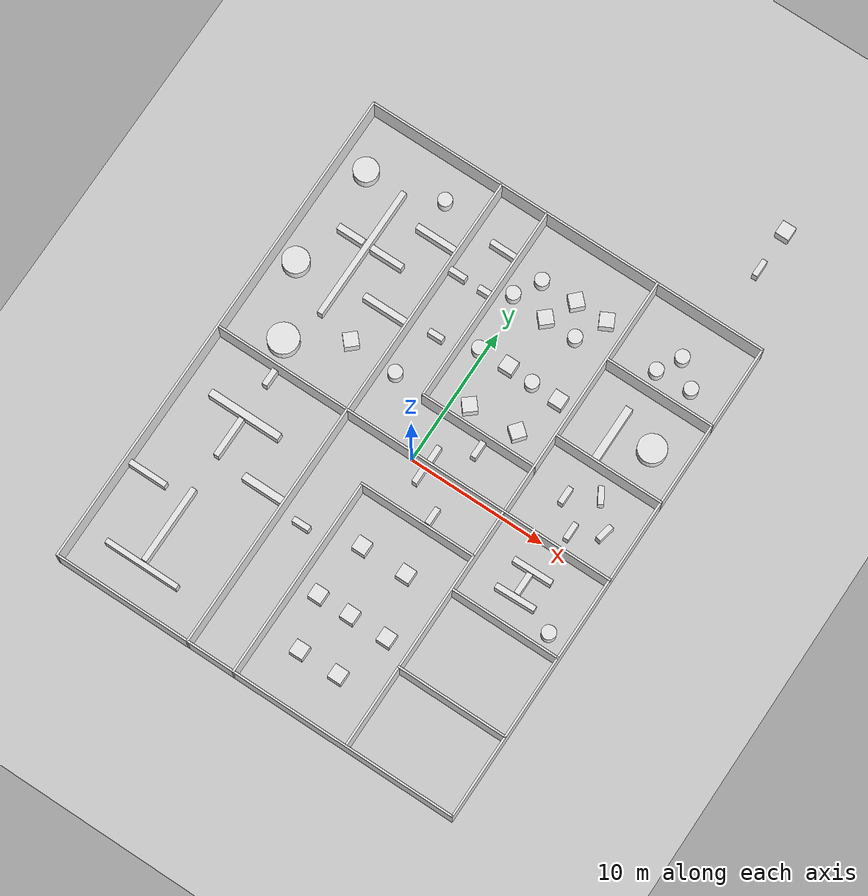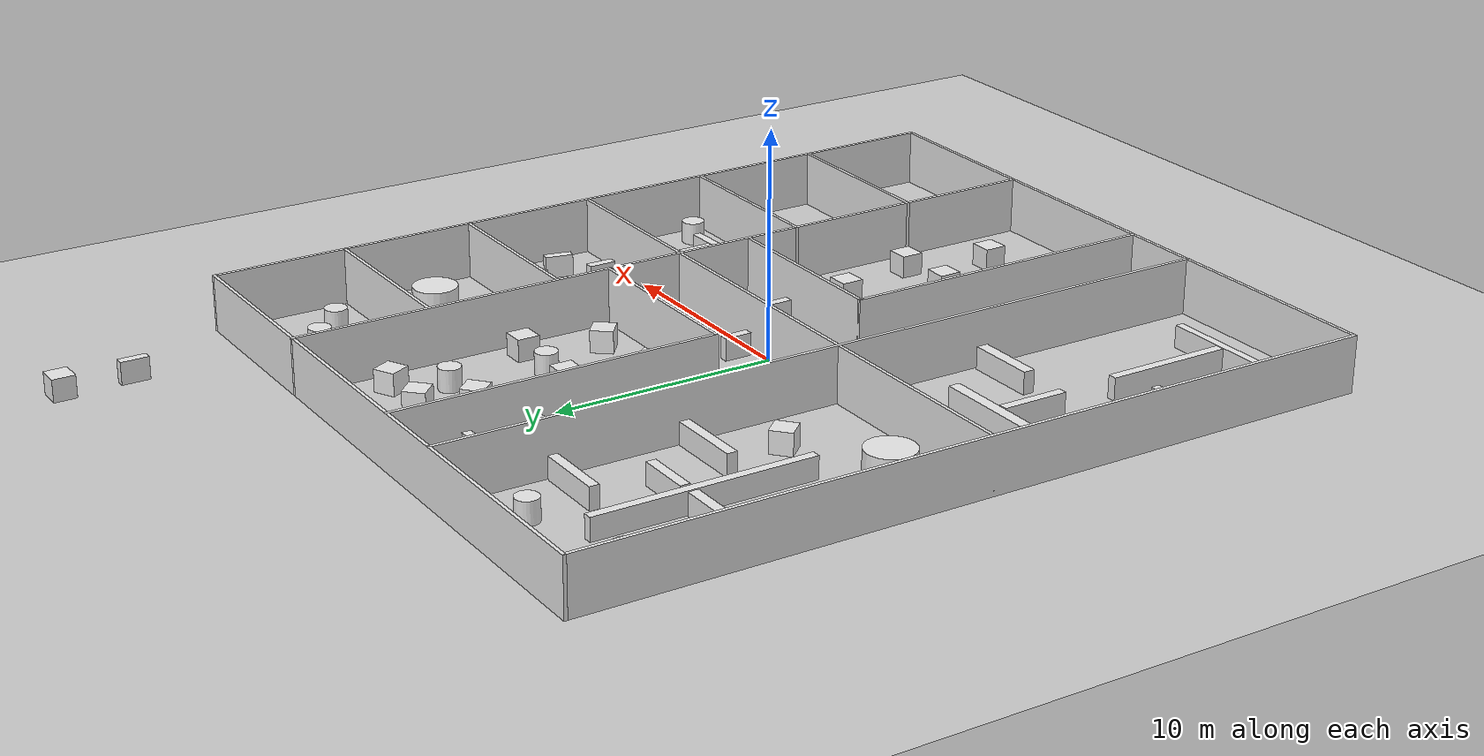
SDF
<sdf version="1.7">
 <world name="default">
  <light name="sun" type="directional">
   <pose>0 0 10 0 -0 0</pose>
   <diffuse>0.8 0.8 0.8 1</diffuse>
   <specular>0.2 0.2 0.2 1</specular>
   <attenuation>
    <range>1000</range>
    <constant>0.9</constant>
    <linear>0.01</linear>
    <quadratic>0.001</quadratic>
   </attenuation>
   <direction>-0.5 0.1 -0.9</direction>
   <spot><inner_angle>0</inner_angle><outer_angle>0</outer_angle><falloff>0</falloff></spot>
  </light>
  <model name="ground_plane">
   <static>1</static>
   <link name="link">
    <collision name="collision">
     <geometry><plane><normal>0 0 1</normal><size>100 100</size></plane></geometry>
     <surface><friction><ode><mu>100</mu><mu2>50</mu2></ode></friction></surface>
    </collision>
    <visual name="visual">
     <cast_shadows>0</cast_shadows>
     <geometry><plane><normal>0 0 1</normal><size>100 100</size></plane></geometry>
     <material>
      <script><uri>file://media/materials/scripts/gazebo.material</uri><name>Gazebo/Grey</name></script>
     </material>
    </visual>
   </link>
   <static>1</static>
  </model>
  <gravity>0 0 -9.8</gravity>
  <magnetic_field>6e-06 2.3e-05 -4.2e-05</magnetic_field>
  <atmosphere type="adiabatic"/>
  <physics type="ode">
   <max_step_size>0.001</max_step_size>
   <real_time_factor>1</real_time_factor>
   <real_time_update_rate>0</real_time_update_rate>
  </physics>
  <scene><ambient>0.4 0.4 0.4 1</ambient><background>0.7 0.7 0.7 1</background><shadows>1</shadows></scene>
  <spherical_coordinates>
   <surface_model>EARTH_WGS84</surface_model>
   <latitude_deg>0</latitude_deg>
   <longitude_deg>0</longitude_deg>
   <elevation>0</elevation>
   <heading_deg>0</heading_deg>
  </spherical_coordinates>
  <model name="learning_world">
   <pose>0.0003 -0 0 0 -0 0</pose>
   <link name="Wall_10">
    <collision name="Wall_10_Collision">
     <geometry><box><size>36.15 0.15 2.5</size></box></geometry>
     <pose>0 0 1.25 0 -0 0</pose>
    </collision>
    <visual name="Wall_10_Visual">
     <pose>0 0 1.25 0 -0 0</pose>
     <geometry><box><size>36.15 0.15 2.5</size></box></geometry>
     <material>
      <script><uri>file://media/materials/scripts/gazebo.material</uri><name>Gazebo/White</name></script>
      <ambient>1 1 1 1</ambient>
     </material>
     <meta><layer>0</layer></meta>
    </visual>
    <pose>15 0 0 0 -0 1.5708</pose>
   </link>
   <static>1</static>
   <link name="Wall_12">
    <collision name="Wall_12_Collision">
     <geometry><box><size>30.15 0.15 2.5</size></box></geometry>
     <pose>0 0 1.25 0 -0 0</pose>
    </collision>
    <visual name="Wall_12_Visual">
     <pose>0 0 1.25 0 -0 0</pose>
     <geometry><box><size>30.15 0.15 2.5</size></box></geometry>
     <material>
      <script><uri>file://media/materials/scripts/gazebo.material</uri><name>Gazebo/White</name></script>
      <ambient>1 1 1 1</ambient>
     </material>
     <meta><layer>0</layer></meta>
    </visual>
    <pose>0 -18 0 0 -0 3.14159</pose>
   </link>
   <static>1</static>
   <link name="Wall_14">
    <collision name="Wall_14_Collision">
     <geometry><box><size>30.15 0.15 2.5</size></box></geometry>
     <pose>0 0 1.25 0 -0 0</pose>
    </collision>
    <visual name="Wall_14_Visual">
     <pose>0 0 1.25 0 -0 0</pose>
     <geometry><box><size>30.15 0.15 2.5</size></box></geometry>
     <material>
      <script><uri>file://media/materials/scripts/gazebo.material</uri><name>Gazebo/White</name></script>
      <ambient>1 1 1 1</ambient>
     </material>
     <meta><layer>0</layer></meta>
    </visual>
    <pose>0 18 0 0 -0 3.14159</pose>
   </link>
   <static>1</static>
   <link name="Wall_16">
    <collision name="Wall_16_Collision">
     <geometry><box><size>36.15 0.15 2.5</size></box></geometry>
     <pose>0 0 1.25 0 -0 0</pose>
    </collision>
    <visual name="Wall_16_Visual">
     <pose>0 0 1.25 0 -0 0</pose>
     <geometry><box><size>36.15 0.15 2.5</size></box></geometry>
     <material>
      <script><uri>file://media/materials/scripts/gazebo.material</uri><name>Gazebo/White</name></script>
      <ambient>1 1 1 1</ambient>
     </material>
     <meta><layer>0</layer></meta>
    </visual>
    <pose>-15 0 0 0 -0 -1.5708</pose>
   </link>
   <static>1</static>
   <link name="Wall_18">
    <collision name="Wall_18_Collision">
     <geometry><box><size>36.15 0.15 2.5</size></box></geometry>
     <pose>0 0 1.25 0 -0 0</pose>
    </collision>
    <visual name="Wall_18_Visual">
     <pose>0 0 1.25 0 -0 0</pose>
     <geometry><box><size>36.15 0.15 2.5</size></box></geometry>
     <material>
      <script><uri>file://media/materials/scripts/gazebo.material</uri><name>Gazebo/White</name></script>
      <ambient>1 1 1 1</ambient>
     </material>
     <meta><layer>0</layer></meta>
    </visual>
    <pose>7 0 0 0 -0 1.5708</pose>
   </link>
   <static>1</static>
   <link name="Wall_20">
    <collision name="Wall_20_Collision">
     <geometry><box><size>36.15 0.15 2.5</size></box></geometry>
     <pose>0 0 1.25 0 -0 0</pose>
    </collision>
    <visual name="Wall_20_Visual">
     <pose>0 0 1.25 0 -0 0</pose>
     <geometry><box><size>36.15 0.15 2.5</size></box></geometry>
     <material>
      <script><uri>file://media/materials/scripts/gazebo.material</uri><name>Gazebo/White</name></script>
      <ambient>1 1 1 1</ambient>
     </material>
     <meta><layer>0</layer></meta>
    </visual>
    <pose>-5 0 0 0 -0 1.5708</pose>
   </link>
   <static>1</static>
   <link name="Wall_22">
    <collision name="Wall_22_Collision">
     <geometry><box><size>30.15 0.15 2.5</size></box></geometry>
     <pose>0 0 1.25 0 -0 0</pose>
    </collision>
    <visual name="Wall_22_Visual">
     <pose>0 0 1.25 0 -0 0</pose>
     <geometry><box><size>30.15 0.15 2.5</size></box></geometry>
     <material>
      <script><uri>file://media/materials/scripts/gazebo.material</uri><name>Gazebo/White</name></script>
      <ambient>1 1 1 1</ambient>
     </material>
     <meta><layer>0</layer></meta>
    </visual>
    <pose>0 0 0 0 -0 3.14159</pose>
   </link>
   <static>1</static>
   <link name="Wall_24">
    <collision name="Wall_24_Collision">
     <geometry><box><size>8.15 0.15 2.5</size></box></geometry>
     <pose>0 0 1.25 0 -0 0</pose>
    </collision>
    <visual name="Wall_24_Visual">
     <pose>0 0 1.25 0 -0 0</pose>
     <geometry><box><size>8.15 0.15 2.5</size></box></geometry>
     <material>
      <script><uri>file://media/materials/scripts/gazebo.material</uri><name>Gazebo/White</name></script>
      <ambient>1 1 1 1</ambient>
     </material>
     <meta><layer>0</layer></meta>
    </visual>
    <pose>11 -12 0 0 -0 3.14159</pose>
   </link>
   <static>1</static>
   <link name="Wall_26">
    <collision name="Wall_26_Collision">
     <geometry><box><size>8.15 0.15 2.5</size></box></geometry>
     <pose>0 0 1.25 0 -0 0</pose>
    </collision>
    <visual name="Wall_26_Visual">
     <pose>0 0 1.25 0 -0 0</pose>
     <geometry><box><size>8.15 0.15 2.5</size></box></geometry>
     <material>
      <script><uri>file://media/materials/scripts/gazebo.material</uri><name>Gazebo/White</name></script>
      <ambient>1 1 1 1</ambient>
     </material>
     <meta><layer>0</layer></meta>
    </visual>
    <pose>11 12 0 0 -0 3.14159</pose>
   </link>
   <static>1</static>
   <link name="Wall_28">
    <collision name="Wall_28_Collision">
     <geometry><box><size>8.15 0.15 2.5</size></box></geometry>
     <pose>0 0 1.25 0 -0 0</pose>
    </collision>
    <visual name="Wall_28_Visual">
     <pose>0 0 1.25 0 -0 0</pose>
     <geometry><box><size>8.15 0.15 2.5</size></box></geometry>
     <material>
      <script><uri>file://media/materials/scripts/gazebo.material</uri><name>Gazebo/White</name></script>
      <ambient>1 1 1 1</ambient>
     </material>
     <meta><layer>0</layer></meta>
    </visual>
    <pose>11 6 0 0 -0 3.14159</pose>
   </link>
   <static>1</static>
   <link name="Wall_30">
    <collision name="Wall_30_Collision">
     <geometry><box><size>8.15 0.15 2.5</size></box></geometry>
     <pose>0 0 1.25 0 -0 0</pose>
    </collision>
    <visual name="Wall_30_Visual">
     <pose>0 0 1.25 0 -0 0</pose>
     <geometry><box><size>8.15 0.15 2.5</size></box></geometry>
     <material>
      <script><uri>file://media/materials/scripts/gazebo.material</uri><name>Gazebo/White</name></script>
      <ambient>1 1 1 1</ambient>
     </material>
     <meta><layer>0</layer></meta>
    </visual>
    <pose>11 -6 0 0 -0 3.14159</pose>
   </link>
   <static>1</static>
   <link name="Wall_32">
    <collision name="Wall_32_Collision">
     <geometry><box><size>14.65 0.15 2.5</size></box></geometry>
     <pose>0 0 1.25 0 -0 0</pose>
    </collision>
    <visual name="Wall_32_Visual">
     <pose>0 0 1.25 0 -0 0</pose>
     <geometry><box><size>14.65 0.15 2.5</size></box></geometry>
     <material>
      <script><uri>file://media/materials/scripts/gazebo.material</uri><name>Gazebo/White</name></script>
      <ambient>1 1 1 1</ambient>
     </material>
     <meta><layer>0</layer></meta>
    </visual>
    <pose>-1.5 -10.75 0 0 -0 1.5708</pose>
   </link>
   <static>1</static>
   <link name="Wall_34">
    <collision name="Wall_34_Collision">
     <geometry><box><size>8.65 0.15 2.5</size></box></geometry>
     <pose>0 0 1.25 0 -0 0</pose>
    </collision>
    <visual name="Wall_34_Visual">
     <pose>0 0 1.25 0 -0 0</pose>
     <geometry><box><size>8.65 0.15 2.5</size></box></geometry>
     <material>
      <script><uri>file://media/materials/scripts/gazebo.material</uri><name>Gazebo/White</name></script>
      <ambient>1 1 1 1</ambient>
     </material>
     <meta><layer>0</layer></meta>
    </visual>
    <pose>2.75 -3.5 0 0 -0 0</pose>
   </link>
   <static>1</static>
   <link name="Wall_36">
    <collision name="Wall_36_Collision">
     <geometry><box><size>14.65 0.15 2.5</size></box></geometry>
     <pose>0 0 1.25 0 -0 0</pose>
    </collision>
    <visual name="Wall_36_Visual">
     <pose>0 0 1.25 0 -0 0</pose>
     <geometry><box><size>14.65 0.15 2.5</size></box></geometry>
     <material>
      <script><uri>file://media/materials/scripts/gazebo.material</uri><name>Gazebo/White</name></script>
      <ambient>1 1 1 1</ambient>
     </material>
     <meta><layer>0</layer></meta>
    </visual>
    <pose>-1.5 10.75 0 0 -0 -1.5708</pose>
   </link>
   <static>1</static>
   <link name="Wall_38">
    <collision name="Wall_38_Collision">
     <geometry><box><size>8.65 0.15 2.5</size></box></geometry>
     <pose>0 0 1.25 0 -0 0</pose>
     <surface>price</surface>
    </collision>
    <visual name="Wall_38_Visual">
     <pose>0 0 1.25 0 -0 0</pose>
     <geometry><box><size>8.65 0.15 2.5</size></box></geometry>
     <material>
      <script><uri>file://media/materials/scripts/gazebo.material</uri><name>Gazebo/White</name></script>
      <ambient>1 1 1 1</ambient>
     </material>
     <meta><layer>0</layer></meta>
    </visual>
    <pose>2.75 3.5 0 0 -0 0</pose>
   </link>
   <static>1</static>
   <static>1</static>
  </model>
  <model name="unit_box">
   <pose>11.8809 26.013 0.5 0 -0 0</pose>
   <link name="link">
    <inertial>
     <mass>1</mass>
     <inertia>
      <ixx>0.166667</ixx>
      <ixy>0</ixy>
      <ixz>0</ixz>
      <iyy>0.166667</iyy>
      <iyz>0</iyz>
      <izz>0.166667</izz>
     </inertia>
    </inertial>
    <collision name="collision"><geometry><box><size>1 1 1</size></box></geometry></collision>
    <visual name="visual">
     <geometry><box><size>1 1 1</size></box></geometry>
     <material>
      <script><name>Gazebo/White</name><uri>file://media/materials/scripts/gazebo.material</uri></script>
     </material>
    </visual>
   </link>
   <static>1</static>
  </model>
  <model name="unit_cylinder_clone">
   <pose>12.4705 13.6894 0.499997 3e-06 4e-06 -0</pose>
   <link name="link">
    <inertial>
     <mass>1</mass>
     <inertia><ixx>0.145833</ixx><ixy>0</ixy><ixz>0</ixz><iyy>0.145833</iyy><iyz>0</iyz><izz>0.125</izz></inertia>
    </inertial>
    <collision name="collision">
     <geometry><cylinder><radius>0.5</radius><length>1</length></cylinder></geometry>
    </collision>
    <visual name="visual">
     <geometry><cylinder><radius>0.5</radius><length>1</length></cylinder></geometry>
     <material>
      <script><name>Gazebo/White</name><uri>file://media/materials/scripts/gazebo.material</uri></script>
     </material>
    </visual>
   </link>
   <static>1</static>
  </model>
  <model name="unit_cylinder_clone_0">
   <pose>10.863 15.1743 0.499997 3e-06 4e-06 -0</pose>
   <link name="link">
    <inertial>
     <mass>1</mass>
     <inertia><ixx>0.145833</ixx><ixy>0</ixy><ixz>0</ixz><iyy>0.145833</iyy><iyz>0</iyz><izz>0.125</izz></inertia>
    </inertial>
    <collision name="collision">
     <geometry><cylinder><radius>0.5</radius><length>1</length></cylinder></geometry>
    </collision>
    <visual name="visual">
     <geometry><cylinder><radius>0.5</radius><length>1</length></cylinder></geometry>
     <material>
      <script><name>Gazebo/White</name><uri>file://media/materials/scripts/gazebo.material</uri></script>
     </material>
    </visual>
   </link>
   <static>1</static>
  </model>
  <model name="unit_cylinder_clone_2">
   <pose>9.91904 13.5392 0.499997 3e-06 4e-06 -0</pose>
   <link name="link">
    <inertial>
     <mass>1</mass>
     <inertia><ixx>0.145833</ixx><ixy>0</ixy><ixz>0</ixz><iyy>0.145833</iyy><iyz>0</iyz><izz>0.125</izz></inertia>
    </inertial>
    <collision name="collision">
     <geometry><cylinder><radius>0.5</radius><length>1</length></cylinder></geometry>
    </collision>
    <visual name="visual">
     <geometry><cylinder><radius>0.5</radius><length>1</length></cylinder></geometry>
     <material>
      <script><name>Gazebo/White</name><uri>file://media/materials/scripts/gazebo.material</uri></script>
     </material>
    </visual>
   </link>
   <static>1</static>
  </model>
  <model name="unit_box_clone">
   <pose>9.85243 8.26501 0.5 0 -0 0</pose>
   <link name="link">
    <inertial>
     <mass>1</mass>
     <inertia>
      <ixx>0.166667</ixx>
      <ixy>0</ixy>
      <ixz>0</ixz>
      <iyy>0.166667</iyy>
      <iyz>0</iyz>
      <izz>0.166667</izz>
     </inertia>
    </inertial>
    <collision name="collision"><geometry><box><size>0.529551 4.30407 1</size></box></geometry></collision>
    <visual name="visual">
     <geometry><box><size>0.529551 4.30407 1</size></box></geometry>
     <material>
      <script><name>Gazebo/White</name><uri>file://media/materials/scripts/gazebo.material</uri></script>
     </material>
    </visual>
   </link>
   <static>1</static>
  </model>
  <model name="unit_cylinder_clone_3">
   <pose>12.5373 8.97593 0.499997 3e-06 4e-06 -0</pose>
   <link name="link">
    <inertial>
     <mass>1</mass>
     <inertia><ixx>0.145833</ixx><ixy>0</ixy><ixz>0</ixz><iyy>0.145833</iyy><iyz>0</iyz><izz>0.125</izz></inertia>
    </inertial>
    <collision name="collision">
     <geometry><cylinder><radius>0.999115</radius><length>1</length></cylinder></geometry>
    </collision>
    <visual name="visual">
     <geometry><cylinder><radius>0.999115</radius><length>1</length></cylinder></geometry>
     <material>
      <script><name>Gazebo/White</name><uri>file://media/materials/scripts/gazebo.material</uri></script>
     </material>
    </visual>
   </link>
   <static>1</static>
  </model>
  <model name="unit_cylinder_clone_4">
   <pose>13.548 -4.70551 0.499997 3e-06 4e-06 -0</pose>
   <link name="link">
    <inertial>
     <mass>1</mass>
     <inertia><ixx>0.145833</ixx><ixy>0</ixy><ixz>0</ixz><iyy>0.145833</iyy><iyz>0</iyz><izz>0.125</izz></inertia>
    </inertial>
    <collision name="collision">
     <geometry><cylinder><radius>0.5</radius><length>1</length></cylinder></geometry>
    </collision>
    <visual name="visual">
     <geometry><cylinder><radius>0.5</radius><length>1</length></cylinder></geometry>
     <material>
      <script><name>Gazebo/White</name><uri>file://media/materials/scripts/gazebo.material</uri></script>
     </material>
    </visual>
   </link>
   <static>1</static>
  </model>
  <model name="unit_box_clone_0">
   <pose>11.822 22.948 0.5 0 -0 0</pose>
   <link name="link">
    <inertial>
     <mass>1</mass>
     <inertia>
      <ixx>0.166667</ixx>
      <ixy>0</ixy>
      <ixz>0</ixz>
      <iyy>0.166667</iyy>
      <iyz>0</iyz>
      <izz>0.166667</izz>
     </inertia>
    </inertial>
    <collision name="collision"><geometry><box><size>0.393288 1.23728 1</size></box></geometry></collision>
    <visual name="visual">
     <geometry><box><size>0.393288 1.23728 1</size></box></geometry>
     <material>
      <script><name>Gazebo/White</name><uri>file://media/materials/scripts/gazebo.material</uri></script>
     </material>
    </visual>
   </link>
   <static>1</static>
  </model>
  <model name="unit_box_clone_0_clone">
   <pose>12.9851 2.67057 0.5 0 0 -0.216656</pose>
   <link name="link">
    <inertial>
     <mass>1</mass>
     <inertia>
      <ixx>0.166667</ixx>
      <ixy>0</ixy>
      <ixz>0</ixz>
      <iyy>0.166667</iyy>
      <iyz>0</iyz>
      <izz>0.166667</izz>
     </inertia>
    </inertial>
    <collision name="collision"><geometry><box><size>0.393288 1.23728 1</size></box></geometry></collision>
    <visual name="visual">
     <geometry><box><size>0.393288 1.23728 1</size></box></geometry>
     <material>
      <script><name>Gazebo/White</name><uri>file://media/materials/scripts/gazebo.material</uri></script>
     </material>
    </visual>
   </link>
   <static>1</static>
  </model>
  <model name="unit_box_clone_0_clone_0">
   <pose>11.4656 4.58146 0.5 0 -0 0.539033</pose>
   <link name="link">
    <inertial>
     <mass>1</mass>
     <inertia>
      <ixx>0.166667</ixx>
      <ixy>0</ixy>
      <ixz>0</ixz>
      <iyy>0.166667</iyy>
      <iyz>0</iyz>
      <izz>0.166667</izz>
     </inertia>
    </inertial>
    <collision name="collision"><geometry><box><size>0.393288 1.23728 1</size></box></geometry></collision>
    <visual name="visual">
     <geometry><box><size>0.393288 1.23728 1</size></box></geometry>
     <material>
      <script><name>Gazebo/White</name><uri>file://media/materials/scripts/gazebo.material</uri></script>
     </material>
    </visual>
   </link>
   <static>1</static>
  </model>
  <model name="unit_box_clone_0_clone_1">
   <pose>11.1302 1.55984 0.5 0 -0 0</pose>
   <link name="link">
    <inertial>
     <mass>1</mass>
     <inertia>
      <ixx>0.166667</ixx>
      <ixy>0</ixy>
      <ixz>0</ixz>
      <iyy>0.166667</iyy>
      <iyz>0</iyz>
      <izz>0.166667</izz>
     </inertia>
    </inertial>
    <collision name="collision"><geometry><box><size>0.393288 1.23728 1</size></box></geometry></collision>
    <visual name="visual">
     <geometry><box><size>0.393288 1.23728 1</size></box></geometry>
     <material>
      <script><name>Gazebo/White</name><uri>file://media/materials/scripts/gazebo.material</uri></script>
     </material>
    </visual>
   </link>
   <static>1</static>
  </model>
  <model name="unit_box_clone_0_clone_2">
   <pose>9.56244 3.33628 0.5 0 -0 0</pose>
   <link name="link">
    <inertial>
     <mass>1</mass>
     <inertia>
      <ixx>0.166667</ixx>
      <ixy>0</ixy>
      <ixz>0</ixz>
      <iyy>0.166667</iyy>
      <iyz>0</iyz>
      <izz>0.166667</izz>
     </inertia>
    </inertial>
    <collision name="collision"><geometry><box><size>0.393288 1.23728 1</size></box></geometry></collision>
    <visual name="visual">
     <geometry><box><size>0.393288 1.23728 1</size></box></geometry>
     <material>
      <script><name>Gazebo/White</name><uri>file://media/materials/scripts/gazebo.material</uri></script>
     </material>
    </visual>
   </link>
   <static>1</static>
  </model>
  <model name="unit_box_clone_0_clone_3">
   <pose>10.4787 -2.97325 0.5 0 -0 0</pose>
   <link name="link">
    <inertial>
     <mass>1</mass>
     <inertia>
      <ixx>0.166667</ixx>
      <ixy>0</ixy>
      <ixz>0</ixz>
      <iyy>0.166667</iyy>
      <iyz>0</iyz>
      <izz>0.166667</izz>
     </inertia>
    </inertial>
    <collision name="collision"><geometry><box><size>0.393288 1.58979 1</size></box></geometry></collision>
    <visual name="visual">
     <geometry><box><size>0.393288 1.58979 1</size></box></geometry>
     <material>
      <script><name>Gazebo/White</name><uri>file://media/materials/scripts/gazebo.material</uri></script>
     </material>
    </visual>
   </link>
   <static>1</static>
  </model>
  <model name="unit_box_clone_0_clone_4">
   <pose>10.523 -1.94507 0.5 0 -0 1.58429</pose>
   <link name="link">
    <inertial>
     <mass>1</mass>
     <inertia>
      <ixx>0.166667</ixx>
      <ixy>0</ixy>
      <ixz>0</ixz>
      <iyy>0.166667</iyy>
      <iyz>0</iyz>
      <izz>0.166667</izz>
     </inertia>
    </inertial>
    <collision name="collision"><geometry><box><size>0.393288 2.87734 1</size></box></geometry></collision>
    <visual name="visual">
     <geometry><box><size>0.393288 2.87734 1</size></box></geometry>
     <material>
      <script><name>Gazebo/White</name><uri>file://media/materials/scripts/gazebo.material</uri></script>
     </material>
    </visual>
   </link>
   <static>1</static>
  </model>
  <model name="unit_box_clone_0_clone_5">
   <pose>10.538 -3.98246 0.5 0 -0 1.5967</pose>
   <link name="link">
    <inertial>
     <mass>1</mass>
     <inertia>
      <ixx>0.166667</ixx>
      <ixy>0</ixy>
      <ixz>0</ixz>
      <iyy>0.166667</iyy>
      <iyz>0</iyz>
      <izz>0.166667</izz>
     </inertia>
    </inertial>
    <collision name="collision"><geometry><box><size>0.393288 2.93311 1</size></box></geometry></collision>
    <visual name="visual">
     <geometry><box><size>0.393288 2.93311 1</size></box></geometry>
     <material>
      <script><name>Gazebo/White</name><uri>file://media/materials/scripts/gazebo.material</uri></script>
     </material>
    </visual>
   </link>
   <static>1</static>
  </model>
  <model name="unit_box_clone_0_clone_6">
   <pose>3.25709 2.7423 0.5 0 -0 0</pose>
   <link name="link">
    <inertial>
     <mass>1</mass>
     <inertia>
      <ixx>0.166667</ixx>
      <ixy>0</ixy>
      <ixz>0</ixz>
      <iyy>0.166667</iyy>
      <iyz>0</iyz>
      <izz>0.166667</izz>
     </inertia>
    </inertial>
    <collision name="collision"><geometry><box><size>0.393288 1.23728 1</size></box></geometry></collision>
    <visual name="visual">
     <geometry><box><size>0.393288 1.23728 1</size></box></geometry>
     <material>
      <script><name>Gazebo/White</name><uri>file://media/materials/scripts/gazebo.material</uri></script>
     </material>
    </visual>
   </link>
   <static>1</static>
  </model>
  <model name="unit_box_clone_0_clone_7">
   <pose>1.08053 0.911136 0.5 0 -0 0</pose>
   <link name="link">
    <inertial>
     <mass>1</mass>
     <inertia>
      <ixx>0.166667</ixx>
      <ixy>0</ixy>
      <ixz>0</ixz>
      <iyy>0.166667</iyy>
      <iyz>0</iyz>
      <izz>0.166667</izz>
     </inertia>
    </inertial>
    <collision name="collision"><geometry><box><size>0.393288 1.23728 1</size></box></geometry></collision>
    <visual name="visual">
     <geometry><box><size>0.393288 1.23728 1</size></box></geometry>
     <material>
      <script><name>Gazebo/White</name><uri>file://media/materials/scripts/gazebo.material</uri></script>
     </material>
    </visual>
   </link>
   <static>1</static>
  </model>
  <model name="unit_box_clone_0_clone_8">
   <pose>-3.19231 7.57575 0.5 0 0 -1.55919</pose>
   <link name="link">
    <inertial>
     <mass>1</mass>
     <inertia>
      <ixx>0.166667</ixx>
      <ixy>0</ixy>
      <ixz>0</ixz>
      <iyy>0.166667</iyy>
      <iyz>0</iyz>
      <izz>0.166667</izz>
     </inertia>
    </inertial>
    <collision name="collision"><geometry><box><size>0.393288 1.08756 1</size></box></geometry></collision>
    <visual name="visual">
     <geometry><box><size>0.393288 1.08756 1</size></box></geometry>
     <material>
      <script><name>Gazebo/White</name><uri>file://media/materials/scripts/gazebo.material</uri></script>
     </material>
    </visual>
   </link>
   <static>1</static>
  </model>
  <model name="unit_box_clone_0_clone_9">
   <pose>-2.13488 11.781 0.5 0 0 -1.56161</pose>
   <link name="link">
    <inertial>
     <mass>1</mass>
     <inertia>
      <ixx>0.166667</ixx>
      <ixy>0</ixy>
      <ixz>0</ixz>
      <iyy>0.166667</iyy>
      <iyz>0</iyz>
      <izz>0.166667</izz>
     </inertia>
    </inertial>
    <collision name="collision"><geometry><box><size>0.393288 1.07746 1</size></box></geometry></collision>
    <visual name="visual">
     <geometry><box><size>0.393288 1.07746 1</size></box></geometry>
     <material>
      <script><name>Gazebo/White</name><uri>file://media/materials/scripts/gazebo.material</uri></script>
     </material>
    </visual>
   </link>
   <static>1</static>
  </model>
  <model name="unit_box_clone_0_clone_10">
   <pose>-4.29038 11.7731 0.5 0 0 -1.57231</pose>
   <link name="link">
    <inertial>
     <mass>1</mass>
     <inertia>
      <ixx>0.166667</ixx>
      <ixy>0</ixy>
      <ixz>0</ixz>
      <iyy>0.166667</iyy>
      <iyz>0</iyz>
      <izz>0.166667</izz>
     </inertia>
    </inertial>
    <collision name="collision"><geometry><box><size>0.393288 1.23728 1</size></box></geometry></collision>
    <visual name="visual">
     <geometry><box><size>0.393288 1.23728 1</size></box></geometry>
     <material>
      <script><name>Gazebo/White</name><uri>file://media/materials/scripts/gazebo.material</uri></script>
     </material>
    </visual>
   </link>
   <static>1</static>
  </model>
  <model name="unit_box_clone_0_clone_11">
   <pose>-2.64588 14.783 0.5 0 0 -1.57753</pose>
   <link name="link">
    <inertial>
     <mass>1</mass>
     <inertia>
      <ixx>0.166667</ixx>
      <ixy>0</ixy>
      <ixz>0</ixz>
      <iyy>0.166667</iyy>
      <iyz>0</iyz>
      <izz>0.166667</izz>
     </inertia>
    </inertial>
    <collision name="collision"><geometry><box><size>0.393288 2.08227 1</size></box></geometry></collision>
    <visual name="visual">
     <geometry><box><size>0.393288 2.08227 1</size></box></geometry>
     <material>
      <script><name>Gazebo/White</name><uri>file://media/materials/scripts/gazebo.material</uri></script>
     </material>
    </visual>
   </link>
   <static>1</static>
  </model>
  <model name="unit_cylinder_clone_5">
   <pose>4.35654 12.457 0.499997 3e-06 4e-06 -0</pose>
   <link name="link">
    <inertial>
     <mass>1</mass>
     <inertia><ixx>0.145833</ixx><ixy>0</ixy><ixz>0</ixz><iyy>0.145833</iyy><iyz>0</iyz><izz>0.125</izz></inertia>
    </inertial>
    <collision name="collision">
     <geometry><cylinder><radius>0.5</radius><length>1</length></cylinder></geometry>
    </collision>
    <visual name="visual">
     <geometry><cylinder><radius>0.5</radius><length>1</length></cylinder></geometry>
     <material>
      <script><name>Gazebo/White</name><uri>file://media/materials/scripts/gazebo.material</uri></script>
     </material>
    </visual>
   </link>
   <static>1</static>
  </model>
  <model name="unit_cylinder_clone_6">
   <pose>-0.574989 12.6855 0.499997 3e-06 4e-06 -0</pose>
   <link name="link">
    <inertial>
     <mass>1</mass>
     <inertia><ixx>0.145833</ixx><ixy>0</ixy><ixz>0</ixz><iyy>0.145833</iyy><iyz>0</iyz><izz>0.125</izz></inertia>
    </inertial>
    <collision name="collision">
     <geometry><cylinder><radius>0.5</radius><length>1</length></cylinder></geometry>
    </collision>
    <visual name="visual">
     <geometry><cylinder><radius>0.5</radius><length>1</length></cylinder></geometry>
     <material>
      <script><name>Gazebo/White</name><uri>file://media/materials/scripts/gazebo.material</uri></script>
     </material>
    </visual>
   </link>
   <static>1</static>
  </model>
  <model name="unit_cylinder_clone_7">
   <pose>0.477856 14.4715 0.499997 3e-06 4e-06 -0</pose>
   <link name="link">
    <inertial>
     <mass>1</mass>
     <inertia><ixx>0.145833</ixx><ixy>0</ixy><ixz>0</ixz><iyy>0.145833</iyy><iyz>0</iyz><izz>0.125</izz></inertia>
    </inertial>
    <collision name="collision">
     <geometry><cylinder><radius>0.5</radius><length>1</length></cylinder></geometry>
    </collision>
    <visual name="visual">
     <geometry><cylinder><radius>0.5</radius><length>1</length></cylinder></geometry>
     <material>
      <script><name>Gazebo/White</name><uri>file://media/materials/scripts/gazebo.material</uri></script>
     </material>
    </visual>
   </link>
   <static>1</static>
   <static>1</static>
  </model>
  <model name="unit_cylinder_clone_8">
   <pose>3.68011 8.4002 0.499997 3e-06 4e-06 -0</pose>
   <link name="link">
    <inertial>
     <mass>1</mass>
     <inertia><ixx>0.145833</ixx><ixy>0</ixy><ixz>0</ixz><iyy>0.145833</iyy><iyz>0</iyz><izz>0.125</izz></inertia>
    </inertial>
    <collision name="collision">
     <geometry><cylinder><radius>0.5</radius><length>1</length></cylinder></geometry>
    </collision>
    <visual name="visual">
     <geometry><cylinder><radius>0.5</radius><length>1</length></cylinder></geometry>
     <material>
      <script><name>Gazebo/White</name><uri>file://media/materials/scripts/gazebo.material</uri></script>
     </material>
    </visual>
   </link>
   <static>1</static>
  </model>
  <model name="unit_cylinder_clone_9">
   <pose>-0.408137 8.41624 0.499997 3e-06 4e-06 -0</pose>
   <link name="link">
    <inertial>
     <mass>1</mass>
     <inertia><ixx>0.145833</ixx><ixy>0</ixy><ixz>0</ixz><iyy>0.145833</iyy><iyz>0</iyz><izz>0.125</izz></inertia>
    </inertial>
    <collision name="collision">
     <geometry><cylinder><radius>0.5</radius><length>1</length></cylinder></geometry>
    </collision>
    <visual name="visual">
     <geometry><cylinder><radius>0.5</radius><length>1</length></cylinder></geometry>
     <material>
      <script><name>Gazebo/White</name><uri>file://media/materials/scripts/gazebo.material</uri></script>
     </material>
    </visual>
   </link>
   <static>1</static>
  </model>
  <model name="unit_box_clone_1">
   <pose>5.74047 8.36018 0.5 0 -0 0</pose>
   <link name="link">
    <inertial>
     <mass>1</mass>
     <inertia>
      <ixx>0.166667</ixx>
      <ixy>0</ixy>
      <ixz>0</ixz>
      <iyy>0.166667</iyy>
      <iyz>0</iyz>
      <izz>0.166667</izz>
     </inertia>
    </inertial>
    <collision name="collision"><geometry><box><size>1 1 1</size></box></geometry></collision>
    <visual name="visual">
     <geometry><box><size>1 1 1</size></box></geometry>
     <material>
      <script><name>Gazebo/White</name><uri>file://media/materials/scripts/gazebo.material</uri></script>
     </material>
    </visual>
   </link>
   <static>1</static>
  </model>
  <model name="unit_box_clone_2">
   <pose>5.45909 14.5253 0.5 0 -0 0.470572</pose>
   <link name="link">
    <inertial>
     <mass>1</mass>
     <inertia>
      <ixx>0.166667</ixx>
      <ixy>0</ixy>
      <ixz>0</ixz>
      <iyy>0.166667</iyy>
      <iyz>0</iyz>
      <izz>0.166667</izz>
     </inertia>
    </inertial>
    <collision name="collision"><geometry><box><size>1 1 1</size></box></geometry></collision>
    <visual name="visual">
     <geometry><box><size>1 1 1</size></box></geometry>
     <material>
      <script><name>Gazebo/White</name><uri>file://media/materials/scripts/gazebo.material</uri></script>
     </material>
    </visual>
   </link>
   <static>1</static>
  </model>
  <model name="unit_box_clone_3">
   <pose>1.81715 8.50639 0.5 0 -0 0</pose>
   <link name="link">
    <inertial>
     <mass>1</mass>
     <inertia>
      <ixx>0.166667</ixx>
      <ixy>0</ixy>
      <ixz>0</ixz>
      <iyy>0.166667</iyy>
      <iyz>0</iyz>
      <izz>0.166667</izz>
     </inertia>
    </inertial>
    <collision name="collision"><geometry><box><size>1 1 1</size></box></geometry></collision>
    <visual name="visual">
     <geometry><box><size>1 1 1</size></box></geometry>
     <material>
      <script><name>Gazebo/White</name><uri>file://media/materials/scripts/gazebo.material</uri></script>
     </material>
    </visual>
   </link>
   <static>1</static>
  </model>
  <model name="unit_box_clone_4">
   <pose>1.15955 4.90686 0.5 0 0 -0.874801</pose>
   <link name="link">
    <inertial>
     <mass>1</mass>
     <inertia>
      <ixx>0.166667</ixx>
      <ixy>0</ixy>
      <ixz>0</ixz>
      <iyy>0.166667</iyy>
      <iyz>0</iyz>
      <izz>0.166667</izz>
     </inertia>
    </inertial>
    <collision name="collision"><geometry><box><size>1 1 1</size></box></geometry></collision>
    <visual name="visual">
     <geometry><box><size>1 1 1</size></box></geometry>
     <material>
      <script><name>Gazebo/White</name><uri>file://media/materials/scripts/gazebo.material</uri></script>
     </material>
    </visual>
   </link>
   <static>1</static>
  </model>
  <model name="unit_box_clone_5">
   <pose>4.68055 5.14482 0.5 0 0 -0.684373</pose>
   <link name="link">
    <inertial>
     <mass>1</mass>
     <inertia>
      <ixx>0.166667</ixx>
      <ixy>0</ixy>
      <ixz>0</ixz>
      <iyy>0.166667</iyy>
      <iyz>0</iyz>
      <izz>0.166667</izz>
     </inertia>
    </inertial>
    <collision name="collision"><geometry><box><size>1 1 1</size></box></geometry></collision>
    <visual name="visual">
     <geometry><box><size>1 1 1</size></box></geometry>
     <material>
      <script><name>Gazebo/White</name><uri>file://media/materials/scripts/gazebo.material</uri></script>
     </material>
    </visual>
   </link>
   <static>1</static>
  </model>
  <model name="unit_cylinder_clone_11">
   <pose>-4.02979 4.06921 0.499997 3e-06 4e-06 -0</pose>
   <link name="link">
    <inertial>
     <mass>1</mass>
     <inertia><ixx>0.145833</ixx><ixy>0</ixy><ixz>0</ixz><iyy>0.145833</iyy><iyz>0</iyz><izz>0.125</izz></inertia>
    </inertial>
    <collision name="collision">
     <geometry><cylinder><radius>0.5</radius><length>1</length></cylinder></geometry>
    </collision>
    <visual name="visual">
     <geometry><cylinder><radius>0.5</radius><length>1</length></cylinder></geometry>
     <material>
      <script><name>Gazebo/White</name><uri>file://media/materials/scripts/gazebo.material</uri></script>
     </material>
    </visual>
   </link>
   <static>1</static>
  </model>
  <model name="unit_box_clone_0_clone_12">
   <pose>-10.2652 9.51005 0.5 0 -0 0</pose>
   <link name="link">
    <inertial>
     <mass>1</mass>
     <inertia>
      <ixx>0.166667</ixx>
      <ixy>0</ixy>
      <ixz>0</ixz>
      <iyy>0.166667</iyy>
      <iyz>0</iyz>
      <izz>0.166667</izz>
     </inertia>
    </inertial>
    <collision name="collision"><geometry><box><size>0.393288 9.83834 1</size></box></geometry></collision>
    <visual name="visual">
     <geometry><box><size>0.393288 9.83834 1</size></box></geometry>
     <material>
      <script><name>Gazebo/White</name><uri>file://media/materials/scripts/gazebo.material</uri></script>
     </material>
    </visual>
   </link>
   <static>1</static>
  </model>
  <model name="unit_box_clone_6">
   <pose>-8.74082 10.1413 0.5 0 -0 0</pose>
   <link name="link">
    <inertial>
     <mass>1</mass>
     <inertia>
      <ixx>0.166667</ixx>
      <ixy>0</ixy>
      <ixz>0</ixz>
      <iyy>0.166667</iyy>
      <iyz>0</iyz>
      <izz>0.166667</izz>
     </inertia>
    </inertial>
    <collision name="collision"><geometry><box><size>2.4404 0.43144 1</size></box></geometry></collision>
    <visual name="visual">
     <geometry><box><size>2.4404 0.43144 1</size></box></geometry>
     <material>
      <script><name>Gazebo/White</name><uri>file://media/materials/scripts/gazebo.material</uri></script>
     </material>
    </visual>
   </link>
   <static>1</static>
  </model>
  <model name="unit_box_clone_7">
   <pose>-11.5405 10.1518 0.5 0 -0 0</pose>
   <link name="link">
    <inertial>
     <mass>1</mass>
     <inertia>
      <ixx>0.166667</ixx>
      <ixy>0</ixy>
      <ixz>0</ixz>
      <iyy>0.166667</iyy>
      <iyz>0</iyz>
      <izz>0.166667</izz>
     </inertia>
    </inertial>
    <collision name="collision"><geometry><box><size>2.00392 0.458909 1</size></box></geometry></collision>
    <visual name="visual">
     <geometry><box><size>2.00392 0.458909 1</size></box></geometry>
     <material>
      <script><name>Gazebo/White</name><uri>file://media/materials/scripts/gazebo.material</uri></script>
     </material>
    </visual>
   </link>
   <static>1</static>
  </model>
  <model name="unit_cylinder_clone_12">
   <pose>-7.74504 15.4885 0.499997 3e-06 4e-06 -0</pose>
   <link name="link">
    <inertial>
     <mass>1</mass>
     <inertia><ixx>0.145833</ixx><ixy>0</ixy><ixz>0</ixz><iyy>0.145833</iyy><iyz>0</iyz><izz>0.125</izz></inertia>
    </inertial>
    <collision name="collision">
     <geometry><cylinder><radius>0.5</radius><length>1</length></cylinder></geometry>
    </collision>
    <visual name="visual">
     <geometry><cylinder><radius>0.5</radius><length>1</length></cylinder></geometry>
     <material>
      <script><name>Gazebo/White</name><uri>file://media/materials/scripts/gazebo.material</uri></script>
     </material>
    </visual>
   </link>
   <static>1</static>
  </model>
  <model name="unit_cylinder_clone_13">
   <pose>-13.1757 14.3213 0.499997 3e-06 4e-06 -0</pose>
   <link name="link">
    <inertial>
     <mass>1</mass>
     <inertia><ixx>0.145833</ixx><ixy>0</ixy><ixz>0</ixz><iyy>0.145833</iyy><iyz>0</iyz><izz>0.125</izz></inertia>
    </inertial>
    <collision name="collision">
     <geometry><cylinder><radius>0.881975</radius><length>1</length></cylinder></geometry>
    </collision>
    <visual name="visual">
     <geometry><cylinder><radius>0.881975</radius><length>1</length></cylinder></geometry>
     <material>
      <script><name>Gazebo/White</name><uri>file://media/materials/scripts/gazebo.material</uri></script>
     </material>
    </visual>
   </link>
   <static>1</static>
  </model>
  <model name="unit_cylinder_clone_14">
   <pose>-13.5621 6.7097 0.499997 3e-06 4e-06 -0</pose>
   <link name="link">
    <inertial>
     <mass>1</mass>
     <inertia><ixx>0.145833</ixx><ixy>0</ixy><ixz>0</ixz><iyy>0.145833</iyy><iyz>0</iyz><izz>0.125</izz></inertia>
    </inertial>
    <collision name="collision">
     <geometry><cylinder><radius>0.93902</radius><length>1</length></cylinder></geometry>
    </collision>
    <visual name="visual">
     <geometry><cylinder><radius>0.93902</radius><length>1</length></cylinder></geometry>
     <material>
      <script><name>Gazebo/White</name><uri>file://media/materials/scripts/gazebo.material</uri></script>
     </material>
    </visual>
   </link>
   <static>1</static>
  </model>
  <model name="unit_cylinder_clone_15">
   <pose>-11.2945 1.91868 0.499997 3e-06 4e-06 -0</pose>
   <link name="link">
    <inertial>
     <mass>1</mass>
     <inertia><ixx>0.145833</ixx><ixy>0</ixy><ixz>0</ixz><iyy>0.145833</iyy><iyz>0</iyz><izz>0.125</izz></inertia>
    </inertial>
    <collision name="collision">
     <geometry><cylinder><radius>1.08648</radius><length>1</length></cylinder></geometry>
    </collision>
    <visual name="visual">
     <geometry><cylinder><radius>1.08648</radius><length>1</length></cylinder></geometry>
     <material>
      <script><name>Gazebo/White</name><uri>file://media/materials/scripts/gazebo.material</uri></script>
     </material>
    </visual>
   </link>
   <static>1</static>
  </model>
  <model name="unit_box_clone_8">
   <pose>-6.713 12.9904 0.5 0 -0 0</pose>
   <link name="link">
    <inertial>
     <mass>1</mass>
     <inertia>
      <ixx>0.166667</ixx>
      <ixy>0</ixy>
      <ixz>0</ixz>
      <iyy>0.166667</iyy>
      <iyz>0</iyz>
      <izz>0.166667</izz>
     </inertia>
    </inertial>
    <collision name="collision"><geometry><box><size>3.12371 0.431937 1</size></box></geometry></collision>
    <visual name="visual">
     <geometry><box><size>3.12371 0.431937 1</size></box></geometry>
     <material>
      <script><name>Gazebo/White</name><uri>file://media/materials/scripts/gazebo.material</uri></script>
     </material>
    </visual>
   </link>
   <static>1</static>
  </model>
  <model name="unit_box_clone_9">
   <pose>-6.82332 7.20163 0.5 0 -0 0</pose>
   <link name="link">
    <inertial>
     <mass>1</mass>
     <inertia>
      <ixx>0.166667</ixx>
      <ixy>0</ixy>
      <ixz>0</ixz>
      <iyy>0.166667</iyy>
      <iyz>0</iyz>
      <izz>0.166667</izz>
     </inertia>
    </inertial>
    <collision name="collision"><geometry><box><size>3.4126 0.456463 1</size></box></geometry></collision>
    <visual name="visual">
     <geometry><box><size>3.4126 0.456463 1</size></box></geometry>
     <material>
      <script><name>Gazebo/White</name><uri>file://media/materials/scripts/gazebo.material</uri></script>
     </material>
    </visual>
   </link>
   <static>1</static>
  </model>
  <model name="unit_box_clone_10">
   <pose>-7.61341 4.26727 0.5 0 -0 0.731462</pose>
   <link name="link">
    <inertial>
     <mass>1</mass>
     <inertia>
      <ixx>0.166667</ixx>
      <ixy>0</ixy>
      <ixz>0</ixz>
      <iyy>0.166667</iyy>
      <iyz>0</iyz>
      <izz>0.166667</izz>
     </inertia>
    </inertial>
    <collision name="collision"><geometry><box><size>1 1 1</size></box></geometry></collision>
    <visual name="visual">
     <geometry><box><size>1 1 1</size></box></geometry>
     <material>
      <script><name>Gazebo/White</name><uri>file://media/materials/scripts/gazebo.material</uri></script>
     </material>
    </visual>
   </link>
   <static>1</static>
  </model>
  <model name="unit_box_clone_11">
   <pose>2.06142 12.4758 0.5 0 0 -0.840174</pose>
   <link name="link">
    <inertial>
     <mass>1</mass>
     <inertia>
      <ixx>0.166667</ixx>
      <ixy>0</ixy>
      <ixz>0</ixz>
      <iyy>0.166667</iyy>
      <iyz>0</iyz>
      <izz>0.166667</izz>
     </inertia>
    </inertial>
    <collision name="collision"><geometry><box><size>1 1 1</size></box></geometry></collision>
    <visual name="visual">
     <geometry><box><size>1 1 1</size></box></geometry>
     <material>
      <script><name>Gazebo/White</name><uri>file://media/materials/scripts/gazebo.material</uri></script>
     </material>
    </visual>
   </link>
   <static>1</static>
  </model>
  <model name="unit_box_clone_12">
   <pose>3.09158 14.5185 0.5 0 -0 0.788</pose>
   <link name="link">
    <inertial>
     <mass>1</mass>
     <inertia>
      <ixx>0.166667</ixx>
      <ixy>0</ixy>
      <ixz>0</ixz>
      <iyy>0.166667</iyy>
      <iyz>0</iyz>
      <izz>0.166667</izz>
     </inertia>
    </inertial>
    <collision name="collision"><geometry><box><size>1 1 1</size></box></geometry></collision>
    <visual name="visual">
     <geometry><box><size>1 1 1</size></box></geometry>
     <material>
      <script><name>Gazebo/White</name><uri>file://media/materials/scripts/gazebo.material</uri></script>
     </material>
    </visual>
   </link>
   <static>1</static>
  </model>
  <model name="unit_box_clone_0_clone_13">
   <pose>-10.4779 -12.2849 0.5 0 -0 0</pose>
   <link name="link">
    <inertial>
     <mass>1</mass>
     <inertia>
      <ixx>0.166667</ixx>
      <ixy>0</ixy>
      <ixz>0</ixz>
      <iyy>0.166667</iyy>
      <iyz>0</iyz>
      <izz>0.166667</izz>
     </inertia>
    </inertial>
    <collision name="collision"><geometry><box><size>0.393288 5.664 1</size></box></geometry></collision>
    <visual name="visual">
     <geometry><box><size>0.393288 5.664 1</size></box></geometry>
     <material>
      <script><name>Gazebo/White</name><uri>file://media/materials/scripts/gazebo.material</uri></script>
     </material>
    </visual>
   </link>
   <static>1</static>
  </model>
  <model name="unit_box_clone_0_clone_14">
   <pose>-10.5311 -5.42842 0.5 0 -0 0</pose>
   <link name="link">
    <inertial>
     <mass>1</mass>
     <inertia>
      <ixx>0.166667</ixx>
      <ixy>0</ixy>
      <ixz>0</ixz>
      <iyy>0.166667</iyy>
      <iyz>0</iyz>
      <izz>0.166667</izz>
     </inertia>
    </inertial>
    <collision name="collision"><geometry><box><size>0.393288 2.96029 1</size></box></geometry></collision>
    <visual name="visual">
     <geometry><box><size>0.393288 2.96029 1</size></box></geometry>
     <material>
      <script><name>Gazebo/White</name><uri>file://media/materials/scripts/gazebo.material</uri></script>
     </material>
    </visual>
   </link>
   <static>1</static>
  </model>
  <model name="unit_box_clone_0_clone_15">
   <pose>-10.5028 -3.63729 0.5 0 -0 0</pose>
   <link name="link">
    <inertial>
     <mass>1</mass>
     <inertia>
      <ixx>0.166667</ixx>
      <ixy>0</ixy>
      <ixz>0</ixz>
      <iyy>0.166667</iyy>
      <iyz>0</iyz>
      <izz>0.166667</izz>
     </inertia>
    </inertial>
    <collision name="collision"><geometry><box><size>5.38384 0.512683 1</size></box></geometry></collision>
    <visual name="visual">
     <geometry><box><size>5.38384 0.512683 1</size></box></geometry>
     <material>
      <script><name>Gazebo/White</name><uri>file://media/materials/scripts/gazebo.material</uri></script>
     </material>
    </visual>
   </link>
   <static>1</static>
  </model>
  <model name="unit_box_clone_0_clone_16">
   <pose>-10.4744 -15.3429 0.5 0 -0 0</pose>
   <link name="link">
    <inertial>
     <mass>1</mass>
     <inertia>
      <ixx>0.166667</ixx>
      <ixy>0</ixy>
      <ixz>0</ixz>
      <iyy>0.166667</iyy>
      <iyz>0</iyz>
      <izz>0.166667</izz>
     </inertia>
    </inertial>
    <collision name="collision"><geometry><box><size>5.50717 0.363304 1</size></box></geometry></collision>
    <visual name="visual">
     <geometry><box><size>5.50717 0.363304 1</size></box></geometry>
     <material>
      <script><name>Gazebo/White</name><uri>file://media/materials/scripts/gazebo.material</uri></script>
     </material>
    </visual>
   </link>
   <static>1</static>
  </model>
  <model name="unit_box_clone_0_clone_17">
   <pose>-6.75373 -7.00399 0.5 0 -0 0</pose>
   <link name="link">
    <inertial>
     <mass>1</mass>
     <inertia>
      <ixx>0.166667</ixx>
      <ixy>0</ixy>
      <ixz>0</ixz>
      <iyy>0.166667</iyy>
      <iyz>0</iyz>
      <izz>0.166667</izz>
     </inertia>
    </inertial>
    <collision name="collision"><geometry><box><size>3.09946 0.515159 1</size></box></geometry></collision>
    <visual name="visual">
     <geometry><box><size>3.09946 0.515159 1</size></box></geometry>
     <material>
      <script><name>Gazebo/White</name><uri>file://media/materials/scripts/gazebo.material</uri></script>
     </material>
    </visual>
   </link>
   <static>1</static>
  </model>
  <model name="unit_box_clone_0_clone_18">
   <pose>-13.5014 -10.2773 0.5 0 -0 0</pose>
   <link name="link">
    <inertial>
     <mass>1</mass>
     <inertia>
      <ixx>0.166667</ixx>
      <ixy>0</ixy>
      <ixz>0</ixz>
      <iyy>0.166667</iyy>
      <iyz>0</iyz>
      <izz>0.166667</izz>
     </inertia>
    </inertial>
    <collision name="collision"><geometry><box><size>2.7825 0.387176 1</size></box></geometry></collision>
    <visual name="visual">
     <geometry><box><size>2.7825 0.387176 1</size></box></geometry>
     <material>
      <script><name>Gazebo/White</name><uri>file://media/materials/scripts/gazebo.material</uri></script>
     </material>
    </visual>
   </link>
   <static>1</static>
  </model>
  <model name="unit_box_clone_0_clone_19">
   <pose>-10.5604 -0.710299 0.5 0 -0 0</pose>
   <link name="link">
    <inertial>
     <mass>1</mass>
     <inertia>
      <ixx>0.166667</ixx>
      <ixy>0</ixy>
      <ixz>0</ixz>
      <iyy>0.166667</iyy>
      <iyz>0</iyz>
      <izz>0.166667</izz>
     </inertia>
    </inertial>
    <collision name="collision"><geometry><box><size>0.393288 1.23728 1</size></box></geometry></collision>
    <visual name="visual">
     <geometry><box><size>0.393288 1.23728 1</size></box></geometry>
     <material>
      <script><name>Gazebo/White</name><uri>file://media/materials/scripts/gazebo.material</uri></script>
     </material>
    </visual>
   </link>
   <static>1</static>
  </model>
  <model name="unit_box_clone_0_clone_20">
   <pose>3.23223 -2.50545 0.5 0 -0 0</pose>
   <link name="link">
    <inertial>
     <mass>1</mass>
     <inertia>
      <ixx>0.166667</ixx>
      <ixy>0</ixy>
      <ixz>0</ixz>
      <iyy>0.166667</iyy>
      <iyz>0</iyz>
      <izz>0.166667</izz>
     </inertia>
    </inertial>
    <collision name="collision"><geometry><box><size>0.393288 1.23728 1</size></box></geometry></collision>
    <visual name="visual">
     <geometry><box><size>0.393288 1.23728 1</size></box></geometry>
     <material>
      <script><name>Gazebo/White</name><uri>file://media/materials/scripts/gazebo.material</uri></script>
     </material>
    </visual>
   </link>
   <static>1</static>
  </model>
  <model name="unit_box_clone_0_clone_21">
   <pose>1.03311 -0.72723 0.5 0 -0 0</pose>
   <link name="link">
    <inertial>
     <mass>1</mass>
     <inertia>
      <ixx>0.166667</ixx>
      <ixy>0</ixy>
      <ixz>0</ixz>
      <iyy>0.166667</iyy>
      <iyz>0</iyz>
      <izz>0.166667</izz>
     </inertia>
    </inertial>
    <collision name="collision"><geometry><box><size>0.393288 1.23728 1</size></box></geometry></collision>
    <visual name="visual">
     <geometry><box><size>0.393288 1.23728 1</size></box></geometry>
     <material>
      <script><name>Gazebo/White</name><uri>file://media/materials/scripts/gazebo.material</uri></script>
     </material>
    </visual>
   </link>
   <static>1</static>
  </model>
  <model name="unit_box_clone_0_clone_22">
   <pose>-3.46027 -7.57504 0.5 0 0 -1.56452</pose>
   <link name="link">
    <inertial>
     <mass>1</mass>
     <inertia>
      <ixx>0.166667</ixx>
      <ixy>0</ixy>
      <ixz>0</ixz>
      <iyy>0.166667</iyy>
      <iyz>0</iyz>
      <izz>0.166667</izz>
     </inertia>
    </inertial>
    <collision name="collision"><geometry><box><size>0.393288 1.23728 1</size></box></geometry></collision>
    <visual name="visual">
     <geometry><box><size>0.393288 1.23728 1</size></box></geometry>
     <material>
      <script><name>Gazebo/White</name><uri>file://media/materials/scripts/gazebo.material</uri></script>
     </material>
    </visual>
   </link>
   <static>1</static>
  </model>
  <model name="unit_box_clone_13">
   <pose>3.8928 -6.56171 0.5 0 -0 0</pose>
   <link name="link">
    <inertial>
     <mass>1</mass>
     <inertia>
      <ixx>0.166667</ixx>
      <ixy>0</ixy>
      <ixz>0</ixz>
      <iyy>0.166667</iyy>
      <iyz>0</iyz>
      <izz>0.166667</izz>
     </inertia>
    </inertial>
    <collision name="collision"><geometry><box><size>1 1 1</size></box></geometry></collision>
    <visual name="visual">
     <geometry><box><size>1 1 1</size></box></geometry>
     <material>
      <script><name>Gazebo/White</name><uri>file://media/materials/scripts/gazebo.material</uri></script>
     </material>
    </visual>
   </link>
   <static>1</static>
  </model>
  <model name="unit_box_clone_14">
   <pose>0.544029 -6.58216 0.5 0 -0 0</pose>
   <link name="link">
    <inertial>
     <mass>1</mass>
     <inertia>
      <ixx>0.166667</ixx>
      <ixy>0</ixy>
      <ixz>0</ixz>
      <iyy>0.166667</iyy>
      <iyz>0</iyz>
      <izz>0.166667</izz>
     </inertia>
    </inertial>
    <collision name="collision"><geometry><box><size>1 1 1</size></box></geometry></collision>
    <visual name="visual">
     <geometry><box><size>1 1 1</size></box></geometry>
     <material>
      <script><name>Gazebo/White</name><uri>file://media/materials/scripts/gazebo.material</uri></script>
     </material>
    </visual>
   </link>
   <static>1</static>
  </model>
  <model name="unit_box_clone_15">
   <pose>5.15788 -10.6673 0.5 0 -0 0</pose>
   <link name="link">
    <inertial>
     <mass>1</mass>
     <inertia>
      <ixx>0.166667</ixx>
      <ixy>0</ixy>
      <ixz>0</ixz>
      <iyy>0.166667</iyy>
      <iyz>0</iyz>
      <izz>0.166667</izz>
     </inertia>
    </inertial>
    <collision name="collision"><geometry><box><size>1 1 1</size></box></geometry></collision>
    <visual name="visual">
     <geometry><box><size>1 1 1</size></box></geometry>
     <material>
      <script><name>Gazebo/White</name><uri>file://media/materials/scripts/gazebo.material</uri></script>
     </material>
    </visual>
   </link>
   <static>1</static>
  </model>
  <model name="unit_box_clone_16">
   <pose>2.39057 -10.7008 0.5 0 -0 0</pose>
   <link name="link">
    <inertial>
     <mass>1</mass>
     <inertia>
      <ixx>0.166667</ixx>
      <ixy>0</ixy>
      <ixz>0</ixz>
      <iyy>0.166667</iyy>
      <iyz>0</iyz>
      <izz>0.166667</izz>
     </inertia>
    </inertial>
    <collision name="collision"><geometry><box><size>1 1 1</size></box></geometry></collision>
    <visual name="visual">
     <geometry><box><size>1 1 1</size></box></geometry>
     <material>
      <script><name>Gazebo/White</name><uri>file://media/materials/scripts/gazebo.material</uri></script>
     </material>
    </visual>
   </link>
   <static>1</static>
  </model>
  <model name="unit_box_clone_17">
   <pose>-0.03642 -10.7423 0.5 0 -0 0</pose>
   <link name="link">
    <inertial>
     <mass>1</mass>
     <inertia>
      <ixx>0.166667</ixx>
      <ixy>0</ixy>
      <ixz>0</ixz>
      <iyy>0.166667</iyy>
      <iyz>0</iyz>
      <izz>0.166667</izz>
     </inertia>
    </inertial>
    <collision name="collision"><geometry><box><size>1 1 1</size></box></geometry></collision>
    <visual name="visual">
     <geometry><box><size>1 1 1</size></box></geometry>
     <material>
      <script><name>Gazebo/White</name><uri>file://media/materials/scripts/gazebo.material</uri></script>
     </material>
    </visual>
   </link>
   <static>1</static>
  </model>
  <model name="unit_box_clone_18">
   <pose>3.90906 -14.327 0.5 0 -0 0</pose>
   <link name="link">
    <inertial>
     <mass>1</mass>
     <inertia>
      <ixx>0.166667</ixx>
      <ixy>0</ixy>
      <ixz>0</ixz>
      <iyy>0.166667</iyy>
      <iyz>0</iyz>
      <izz>0.166667</izz>
     </inertia>
    </inertial>
    <collision name="collision"><geometry><box><size>1 1 1</size></box></geometry></collision>
    <visual name="visual">
     <geometry><box><size>1 1 1</size></box></geometry>
     <material>
      <script><name>Gazebo/White</name><uri>file://media/materials/scripts/gazebo.material</uri></script>
     </material>
    </visual>
   </link>
   <static>1</static>
  </model>
  <model name="unit_box_clone_19">
   <pose>0.99845 -14.3571 0.5 0 -0 0</pose>
   <link name="link">
    <inertial>
     <mass>1</mass>
     <inertia>
      <ixx>0.166667</ixx>
      <ixy>0</ixy>
      <ixz>0</ixz>
      <iyy>0.166667</iyy>
      <iyz>0</iyz>
      <izz>0.166667</izz>
     </inertia>
    </inertial>
    <collision name="collision"><geometry><box><size>1 1 1</size></box></geometry></collision>
    <visual name="visual">
     <geometry><box><size>1 1 1</size></box></geometry>
     <material>
      <script><name>Gazebo/White</name><uri>file://media/materials/scripts/gazebo.material</uri></script>
     </material>
    </visual>
   </link>
   <static>1</static>
  </model>
 </world>
</sdf>
